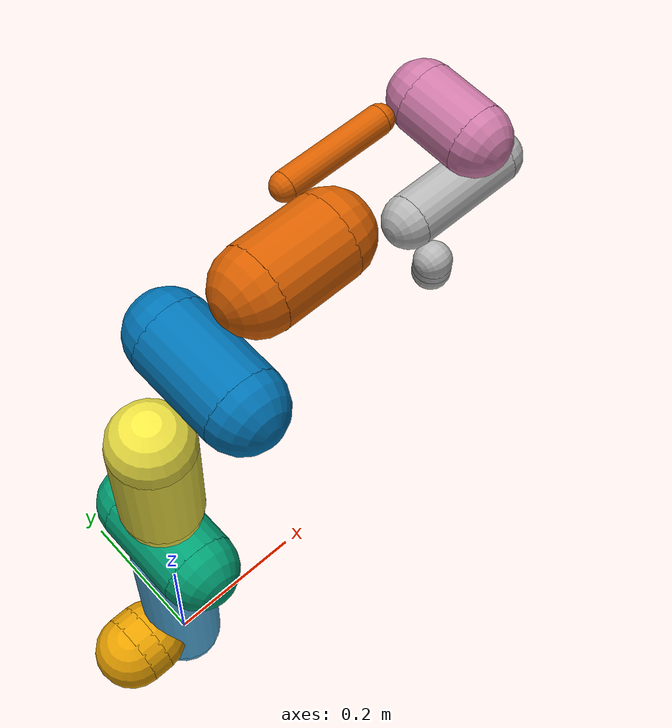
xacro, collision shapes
<?xml version='1.0' encoding='utf-8'?>
<robot xmlns:xacro="http://www.ros.org/wiki/xacro" name="panda">

  <xacro:arg name="arm_id" default="panda" /> <!-- Name of this panda -->
  <xacro:arg name="hand"   default="false" /> <!-- Should a franka_gripper be mounted at the flange?" -->
  <xacro:arg name="gazebo" default="false" /> <!-- Is the robot being simulated in gazebo?" -->

  <xacro:property name="arm_id" value="$(arg arm_id)" />

  <xacro:unless value="$(arg gazebo)">
    <!-- Create a URDF for a real hardware -->
    <xacro:include filename="$(find Task12)/robots/panda_arm.xacro" />
    <xacro:panda_arm arm_id="${arm_id}" safety_distance="-0.007"/>

    <xacro:if value="$(arg hand)">
      <xacro:include filename="$(find franka_description)/robots/hand.xacro"/>
      <xacro:hand ns="${arm_id}" rpy="0 0 0" xyz="0 0 -0.1" connected_to="${arm_id}_link8" safety_distance="-0.007"/>
    </xacro:if>
  </xacro:unless>

  <xacro:if value="$(arg gazebo)">

    <xacro:arg name="xyz" default="0 0 0" />
    <xacro:arg name="rpy" default="0 0 0" />

    <!-- Create a simulatable URDF -->
    <xacro:include filename="$(find franka_description)/robots/utils.xacro" />
    <xacro:include filename="$(find franka_description)/robots/panda_gazebo.xacro" />

    <xacro:panda_arm arm_id="${arm_id}" />

    <xacro:if value="$(arg hand)">
      <xacro:hand ns="${arm_id}" rpy="0 0 0" xyz="0 0 -0.1" connected_to="${arm_id}_link8" />
      <xacro:gazebo-joint joint="${arm_id}_finger_joint1" transmission="hardware_interface/EffortJointInterface" />
      <xacro:gazebo-joint joint="${arm_id}_finger_joint2" transmission="hardware_interface/EffortJointInterface" />
    </xacro:if>

    <!-- Gazebo requires a joint to a link called "world" for statically mounted robots -->
    <link name="world" />
    <joint name="world_joint" type="fixed">
      <origin xyz="$(arg xyz)" rpy="$(arg rpy)" />
      <parent link="world" />
      <child  link="${arm_id}_link0" />
    </joint>

    <xacro:gazebo-joint joint="${arm_id}_joint1" transmission="hardware_interface/EffortJointInterface" />
    <xacro:gazebo-joint joint="${arm_id}_joint2" transmission="hardware_interface/EffortJointInterface" />
    <xacro:gazebo-joint joint="${arm_id}_joint3" transmission="hardware_interface/EffortJointInterface" />
    <xacro:gazebo-joint joint="${arm_id}_joint4" transmission="hardware_interface/EffortJointInterface" />
    <xacro:gazebo-joint joint="${arm_id}_joint5" transmission="hardware_interface/EffortJointInterface" />
    <xacro:gazebo-joint joint="${arm_id}_joint6" transmission="hardware_interface/EffortJointInterface" />
    <xacro:gazebo-joint joint="${arm_id}_joint7" transmission="hardware_interface/EffortJointInterface" />

    <xacro:transmission-franka-state arm_id="${arm_id}" />
    <xacro:transmission-franka-model arm_id="${arm_id}"
       root="${arm_id}_joint1"
       tip="${arm_id}_joint8"
     />

    <gazebo>
      <plugin name="gazebo_ros_control" filename="libgazebo_ros_control.so">
        <robotNamespace>${arm_id}</robotNamespace>
        <controlPeriod>0.001</controlPeriod>
        <robotSimType>franka_gazebo/FrankaHWSim</robotSimType>
      </plugin>
      <self_collide>true</self_collide>
    </gazebo>
  </xacro:if>

</robot>

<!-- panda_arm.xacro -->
<robot xmlns:xacro="http://www.ros.org/wiki/xacro" name="panda">
  <!-- safety_distance: Minimum safety distance in [m] by which the collision volumes are expanded and which is enforced during robot motions -->
  <!-- arm_id: Namespace of the panda arm. Serves to differentiate between arms in case of multiple instances. -->
  <xacro:macro name="panda_arm" params="arm_id:='panda' description_pkg:='franka_description' connected_to:='' xyz:='0 0 0' rpy:='0 0 0' safety_distance:=0">
    <xacro:unless value="${not connected_to}">
      <joint name="${arm_id}_joint_${connected_to}" type="fixed">
        <parent link="${connected_to}"/>
        <child link="${arm_id}_link0"/>
        <origin rpy="${rpy}" xyz="${xyz}"/>
      </joint>
    </xacro:unless>
    <link name="${arm_id}_link0">
      <visual>
        <geometry>
          <mesh filename="package://${description_pkg}/meshes/visual/link0.dae"/>
        </geometry>
      </visual>
      <collision>
        <origin xyz="-0.075 0 0.06" rpy="0 ${pi/2} 0"/>
        <geometry>
          <cylinder radius="${0.06+safety_distance}" length="0.03" />
        </geometry>
      </collision>
      <collision>
        <origin xyz="-0.06 0 0.06" rpy="0 0 0"/>
        <geometry>
          <sphere radius="${0.06+safety_distance}" />
        </geometry>
      </collision>
      <collision>
        <origin xyz="-0.09 0 0.06" rpy="0 0 0"/>
        <geometry>
          <sphere radius="${0.06+safety_distance}" />
        </geometry>
      </collision>
    </link>
    <link name="${arm_id}_link1">
      <visual>
        <geometry>
          <mesh filename="package://${description_pkg}/meshes/visual/link1.dae"/>
        </geometry>
      </visual>
      <collision>
        <origin xyz="0 0 -0.1915" rpy="0 0 0"/>
        <geometry>
          <cylinder radius="${0.06+safety_distance}" length="0.2830" />
        </geometry>
      </collision>
      <collision>
        <origin xyz="0 0 -0.333" rpy="0 0 0"/>
        <geometry>
          <sphere radius="${0.06+safety_distance}" />
        </geometry>
      </collision>
      <collision>
        <origin xyz="0 0 -0.05" rpy="0 0 0"/>
        <geometry>
          <sphere radius="${0.06+safety_distance}" />
        </geometry>
      </collision>
    </link>
    <joint name="${arm_id}_joint1" type="revolute">
      <safety_controller k_position="100.0" k_velocity="40.0" soft_lower_limit="-2.8973" soft_upper_limit="2.8973"/>
      <origin rpy="0 0 0" xyz="0 0 0.333"/>
      <parent link="${arm_id}_link0"/>
      <child link="${arm_id}_link1"/>
      <axis xyz="0 0 1"/>
      <limit effort="87" lower="-2.8973" upper="2.8973" velocity="2.1750"/>
    </joint>
    <link name="${arm_id}_link2">
      <visual>
        <geometry>
          <mesh filename="package://${description_pkg}/meshes/visual/link2.dae"/>
        </geometry>
      </visual>
      <collision>
        <origin xyz="0 0 0" rpy="0 0 0"/>
        <geometry>
          <cylinder radius="${0.06+safety_distance}" length="0.12" />
        </geometry>
      </collision>
      <collision>
        <origin xyz="0 0 -0.06" rpy="0 0 0"/>
        <geometry>
          <sphere radius="${0.06+safety_distance}" />
        </geometry>
      </collision>
      <collision>
        <origin xyz="0 0 0.06" rpy="0 0 0"/>
        <geometry>
          <sphere radius="${0.06+safety_distance}" />
        </geometry>
      </collision>
    </link>
    <joint name="${arm_id}_joint2" type="revolute">
      <safety_controller k_position="100.0" k_velocity="40.0" soft_lower_limit="-1.7628" soft_upper_limit="1.7628"/>
      <origin rpy="${-pi/2} 0 0" xyz="0 0 0"/>
      <parent link="${arm_id}_link1"/>
      <child link="${arm_id}_link2"/>
      <axis xyz="0 0 1"/>
      <limit effort="87" lower="-1.7628" upper="1.7628" velocity="2.1750"/>
    </joint>
    <link name="${arm_id}_link3">
      <visual>
        <geometry>
          <mesh filename="package://${description_pkg}/meshes/visual/link3.dae"/>
        </geometry>
      </visual>
      <collision>
        <origin xyz="0 0 -0.145" rpy="0 0 0"/>
        <geometry>
          <cylinder radius="${0.06+safety_distance}" length="0.15" />
        </geometry>
      </collision>
      <collision>
        <origin xyz="0 0 -0.22" rpy="0 0 0"/>
        <geometry>
          <sphere radius="${0.06+safety_distance}" />
        </geometry>
      </collision>
      <collision>
        <origin xyz="0 0 -0.07" rpy="0 0 0"/>
        <geometry>
          <sphere radius="${0.06+safety_distance}" />
        </geometry>
      </collision>
    </link>
    <joint name="${arm_id}_joint3" type="revolute">
      <safety_controller k_position="100.0" k_velocity="40.0" soft_lower_limit="-2.8973" soft_upper_limit="2.8973"/>
      <origin rpy="${pi/2} 0 0" xyz="0 -0.316 0"/>
      <parent link="${arm_id}_link2"/>
      <child link="${arm_id}_link3"/>
      <axis xyz="0 0 1"/>
      <limit effort="87" lower="-2.8973" upper="2.8973" velocity="2.1750"/>
    </joint>
    <link name="${arm_id}_link4">
      <visual>
        <geometry>
          <mesh filename="package://${description_pkg}/meshes/visual/link4.dae"/>
        </geometry>
      </visual>
      <collision>
        <origin xyz="0 0 0" rpy="0 0 0"/>
        <geometry>
          <cylinder radius="${0.06+safety_distance}" length="0.12" />
        </geometry>
      </collision>
      <collision>
        <origin xyz="0 0 0.06" rpy="0 0 0"/>
        <geometry>
          <sphere radius="${0.06+safety_distance}" />
        </geometry>
      </collision>
      <collision>
        <origin xyz="0 0 -0.06" rpy="0 0 0"/>
        <geometry>
          <sphere radius="${0.06+safety_distance}" />
        </geometry>
      </collision>
    </link>
    <joint name="${arm_id}_joint4" type="revolute">
      <safety_controller k_position="100.0" k_velocity="40.0" soft_lower_limit="-3.0718" soft_upper_limit="-0.0698"/>
      <origin rpy="${pi/2} 0 0" xyz="0.0825 0 0"/>
      <parent link="${arm_id}_link3"/>
      <child link="${arm_id}_link4"/>
      <axis xyz="0 0 1"/>
      <limit effort="87" lower="-3.0718" upper="-0.0698" velocity="2.1750"/>
    </joint>
    <link name="${arm_id}_link5">
      <visual>
        <geometry>
          <mesh filename="package://${description_pkg}/meshes/visual/link5.dae"/>
        </geometry>
      </visual>
      <collision>
        <origin xyz="0 0 -0.26" rpy="0 0 0"/>
        <geometry>
          <cylinder radius="${0.06+safety_distance}" length="0.1" />
        </geometry>
      </collision>
      <collision>
        <origin xyz="0 0 -0.31" rpy="0 0 0"/>
        <geometry>
          <sphere radius="${0.06+safety_distance}" />
        </geometry>
      </collision>
      <collision>
        <origin xyz="0 0 -0.21" rpy="0 0 0"/>
        <geometry>
          <sphere radius="${0.06+safety_distance}" />
        </geometry>
      </collision>
      <collision>
        <origin xyz="0 0.08 -0.13" rpy="0 0 0"/>
        <geometry>
          <cylinder radius="${0.025+safety_distance}" length="0.14" />
        </geometry>
      </collision>
      <collision>
        <origin xyz="0 0.08 -0.06" rpy="0 0 0"/>
        <geometry>
          <sphere radius="${0.025+safety_distance}" />
        </geometry>
      </collision>
      <collision>
        <origin xyz="0 0.08 -0.20" rpy="0 0 0"/>
        <geometry>
          <sphere radius="${0.025+safety_distance}" />
        </geometry>
      </collision>

    </link>
    <joint name="${arm_id}_joint5" type="revolute">
      <safety_controller k_position="100.0" k_velocity="40.0" soft_lower_limit="-2.8973" soft_upper_limit="2.8973"/>
      <origin rpy="${-pi/2} 0 0" xyz="-0.0825 0.384 0"/>
      <parent link="${arm_id}_link4"/>
      <child link="${arm_id}_link5"/>
      <axis xyz="0 0 1"/>
      <limit effort="12" lower="-2.8973" upper="2.8973" velocity="2.6100"/>
    </joint>
    <link name="${arm_id}_link6">
      <visual>
        <geometry>
          <mesh filename="package://${description_pkg}/meshes/visual/link6.dae"/>
        </geometry>
      </visual>
      <collision>
        <origin xyz="0 0 -0.03" rpy="0 0 0"/>
        <geometry>
          <cylinder radius="${0.05+safety_distance}" length="0.08" />
        </geometry>
      </collision>
      <collision>
        <origin xyz="0 0 0.01" rpy="0 0 0"/>
        <geometry>
          <sphere radius="${0.05+safety_distance}" />
        </geometry>
      </collision>
      <collision>
        <origin xyz="0 0 -0.07" rpy="0 0 0"/>
        <geometry>
          <sphere radius="${0.05+safety_distance}" />
        </geometry>
      </collision>
    </link>
    <joint name="${arm_id}_joint6" type="revolute">
      <safety_controller k_position="100.0" k_velocity="40.0" soft_lower_limit="-0.0175" soft_upper_limit="3.7525"/>
      <origin rpy="${pi/2} 0 0" xyz="0 0 0"/>
      <parent link="${arm_id}_link5"/>
      <child link="${arm_id}_link6"/>
      <axis xyz="0 0 1"/>
      <limit effort="12" lower="-0.0175" upper="3.7525" velocity="2.6100"/>
    </joint>
    <link name="${arm_id}_link7">
      <visual>
        <geometry>
          <mesh filename="package://${description_pkg}/meshes/visual/link7.dae"/>
        </geometry>
      </visual>
      <collision>
        <origin xyz="0 0 0.01" rpy="0 0 0"/>
        <geometry>
          <cylinder radius="${0.04+safety_distance}" length="0.14" />
        </geometry>
      </collision>
      <collision>
        <origin xyz="0 0 0.08" rpy="0 0 0"/>
        <geometry>
          <sphere radius="${0.04+safety_distance}"  />
        </geometry>
      </collision>
      <collision>
        <origin xyz="0 0 -0.06" rpy="0 0 0"/>
        <geometry>
          <sphere radius="${0.04+safety_distance}"  />
        </geometry>
      </collision>
      <collision>
        <origin xyz="0.0424 0.0424 0.08" rpy="${pi/2} 0  ${pi/2}"/>
        <geometry>
          <cylinder radius="${0.03+safety_distance}"  length="0.01" />
        </geometry>
      </collision>
      <collision>
        <origin xyz="0.0324 0.0424 0.08" rpy="0 0 ${-pi/4}"/>
        <geometry>
          <sphere radius="${0.03+safety_distance}"  />
        </geometry>
      </collision>
      <collision>
        <origin xyz="0.0524 0.0424 0.08" rpy="0 0 ${-pi/4}"/>
        <geometry>
          <sphere radius="${0.03+safety_distance}"  />
        </geometry>
      </collision>
    </link>
    <joint name="${arm_id}_joint7" type="revolute">
      <safety_controller k_position="100.0" k_velocity="40.0" soft_lower_limit="-2.8973" soft_upper_limit="2.8973"/>
      <origin rpy="${pi/2} 0 0" xyz="0.088 0 0"/>
      <parent link="${arm_id}_link6"/>
      <child link="${arm_id}_link7"/>
      <axis xyz="0 0 1"/>
      <limit effort="12" lower="-2.8973" upper="2.8973" velocity="2.6100"/>
    </joint>
    <link name="${arm_id}_link8"/>
    <joint name="${arm_id}_joint8" type="fixed">
      <origin rpy="0 0 ${-pi/4}" xyz="0 0 0.207"/>
      <parent link="${arm_id}_link7"/>
      <child link="${arm_id}_link8"/>
    </joint>
  </xacro:macro>
</robot>
